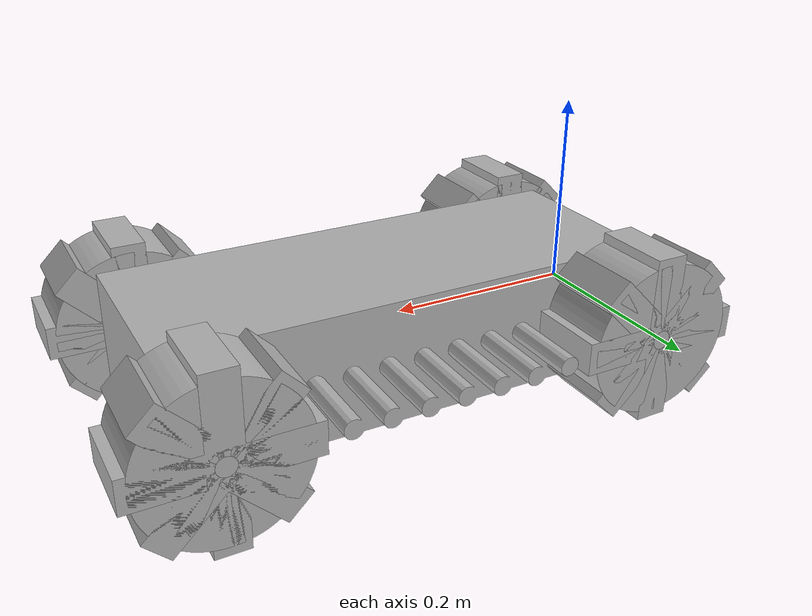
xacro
<?xml version="1.0" ?>
<robot name="prismatic_experiment" xmlns:xacro="http://www.ros.org/wiki/xacro">

<xacro:include filename="$(find prismatic_experiment_description)/urdf/materials.xacro" />
<xacro:include filename="$(find prismatic_experiment_description)/urdf/prismatic_experiment.trans" />
<xacro:include filename="$(find prismatic_experiment_description)/urdf/prismatic_experiment.gazebo" />
<link name="base_link">
  <inertial>
    <origin xyz="0.2258879999999996 -4.3124927618332746e-17 -1.1859355095041503e-16" rpy="0 0 0"/>
    <mass value="13.497451271946687"/>
    <inertia ixx="0.069002" iyy="0.320506" izz="0.353298" ixy="-0.0" iyz="-0.0" ixz="-0.0"/>
  </inertial>
  <visual>
    <origin xyz="0 0 0" rpy="0 0 0"/>
    <geometry>
      <mesh filename="package://prismatic_experiment_description/meshes/base_link.stl" scale="0.001 0.001 0.001"/>
    </geometry>
    <material name="silver"/>
  </visual>
  <collision>
    <origin xyz="0 0 0" rpy="0 0 0"/>
    <geometry>
      <mesh filename="package://prismatic_experiment_description/meshes/base_link.stl" scale="0.001 0.001 0.001"/>
    </geometry>
  </collision>
</link>

<link name="gear_maint_1">
  <inertial>
    <origin xyz="6.137300737063533e-14 0.03999999999999998 -4.250930002814283e-17" rpy="0 0 0"/>
    <mass value="0.8558077419960403"/>
    <inertia ixx="0.001777" iyy="0.002641" izz="0.001777" ixy="-0.0" iyz="-0.0" ixz="-0.0"/>
  </inertial>
  <visual>
    <origin xyz="-0.0 0.175 -0.0" rpy="0 0 0"/>
    <geometry>
      <mesh filename="package://prismatic_experiment_description/meshes/gear_maint_1.stl" scale="0.001 0.001 0.001"/>
    </geometry>
    <material name="silver"/>
  </visual>
  <collision>
    <origin xyz="-0.0 0.175 -0.0" rpy="0 0 0"/>
    <geometry>
      <mesh filename="package://prismatic_experiment_description/meshes/gear_maint_1.stl" scale="0.001 0.001 0.001"/>
    </geometry>
  </collision>
</link>

<link name="gear_mainc_1">
  <inertial>
    <origin xyz="6.136239086296236e-14 0.03999999999999998 -1.0627325007035708e-17" rpy="0 0 0"/>
    <mass value="0.8558077419960404"/>
    <inertia ixx="0.001777" iyy="0.002641" izz="0.001777" ixy="-0.0" iyz="-0.0" ixz="0.0"/>
  </inertial>
  <visual>
    <origin xyz="-0.0 0.175 -0.0" rpy="0 0 0"/>
    <geometry>
      <mesh filename="package://prismatic_experiment_description/meshes/gear_mainc_1.stl" scale="0.001 0.001 0.001"/>
    </geometry>
    <material name="silver"/>
  </visual>
  <collision>
    <origin xyz="-0.0 0.175 -0.0" rpy="0 0 0"/>
    <geometry>
      <mesh filename="package://prismatic_experiment_description/meshes/gear_mainc_1.stl" scale="0.001 0.001 0.001"/>
    </geometry>
  </collision>
</link>

<link name="gear_circle_1">
  <inertial>
    <origin xyz="3.279642276972099e-14 0.03999999999999998 1.1349944714130247e-17" rpy="0 0 0"/>
    <mass value="1.60264164219345"/>
    <inertia ixx="0.00349" iyy="0.00527" izz="0.00349" ixy="-0.0" iyz="0.0" ixz="0.0"/>
  </inertial>
  <visual>
    <origin xyz="-0.0 0.175 -0.0" rpy="0 0 0"/>
    <geometry>
      <mesh filename="package://prismatic_experiment_description/meshes/gear_circle_1.stl" scale="0.001 0.001 0.001"/>
    </geometry>
    <material name="silver"/>
  </visual>
  <collision>
    <origin xyz="-0.0 0.175 -0.0" rpy="0 0 0"/>
    <geometry>
      <mesh filename="package://prismatic_experiment_description/meshes/gear_circle_1.stl" scale="0.001 0.001 0.001"/>
    </geometry>
  </collision>
</link>

<link name="gear_mainc_2">
  <inertial>
    <origin xyz="6.138260039145749e-14 -0.03999999999999998 1.0627325007035708e-17" rpy="0 0 0"/>
    <mass value="0.8558077419960404"/>
    <inertia ixx="0.001777" iyy="0.002641" izz="0.001777" ixy="0.0" iyz="-0.0" ixz="-0.0"/>
  </inertial>
  <visual>
    <origin xyz="-0.0 -0.175 -0.0" rpy="0 0 0"/>
    <geometry>
      <mesh filename="package://prismatic_experiment_description/meshes/gear_mainc_2.stl" scale="0.001 0.001 0.001"/>
    </geometry>
    <material name="silver"/>
  </visual>
  <collision>
    <origin xyz="-0.0 -0.175 -0.0" rpy="0 0 0"/>
    <geometry>
      <mesh filename="package://prismatic_experiment_description/meshes/gear_mainc_2.stl" scale="0.001 0.001 0.001"/>
    </geometry>
  </collision>
</link>

<link name="gear_maint_2">
  <inertial>
    <origin xyz="6.138433511493347e-14 -0.03999999999999998 4.250930002814283e-17" rpy="0 0 0"/>
    <mass value="0.8558077419960403"/>
    <inertia ixx="0.001777" iyy="0.002641" izz="0.001777" ixy="0.0" iyz="-0.0" ixz="0.0"/>
  </inertial>
  <visual>
    <origin xyz="-0.0 -0.175 -0.0" rpy="0 0 0"/>
    <geometry>
      <mesh filename="package://prismatic_experiment_description/meshes/gear_maint_2.stl" scale="0.001 0.001 0.001"/>
    </geometry>
    <material name="silver"/>
  </visual>
  <collision>
    <origin xyz="-0.0 -0.175 -0.0" rpy="0 0 0"/>
    <geometry>
      <mesh filename="package://prismatic_experiment_description/meshes/gear_maint_2.stl" scale="0.001 0.001 0.001"/>
    </geometry>
  </collision>
</link>

<link name="gear_circle_2">
  <inertial>
    <origin xyz="3.278999027912229e-14 -0.03999999999999998 -1.1349944714130247e-17" rpy="0 0 0"/>
    <mass value="1.60264164219345"/>
    <inertia ixx="0.00349" iyy="0.00527" izz="0.00349" ixy="0.0" iyz="0.0" ixz="-0.0"/>
  </inertial>
  <visual>
    <origin xyz="-0.0 -0.175 -0.0" rpy="0 0 0"/>
    <geometry>
      <mesh filename="package://prismatic_experiment_description/meshes/gear_circle_2.stl" scale="0.001 0.001 0.001"/>
    </geometry>
    <material name="silver"/>
  </visual>
  <collision>
    <origin xyz="-0.0 -0.175 -0.0" rpy="0 0 0"/>
    <geometry>
      <mesh filename="package://prismatic_experiment_description/meshes/gear_circle_2.stl" scale="0.001 0.001 0.001"/>
    </geometry>
  </collision>
</link>

<link name="gear_mainc_3">
  <inertial>
    <origin xyz="6.145084441300241e-14 0.03999999999999998 -7.296655933160238e-18" rpy="0 0 0"/>
    <mass value="0.8558077419960404"/>
    <inertia ixx="0.001777" iyy="0.002641" izz="0.001777" ixy="-0.0" iyz="0.0" ixz="0.0"/>
  </inertial>
  <visual>
    <origin xyz="-0.451776 0.175 -0.0" rpy="0 0 0"/>
    <geometry>
      <mesh filename="package://prismatic_experiment_description/meshes/gear_mainc_3.stl" scale="0.001 0.001 0.001"/>
    </geometry>
    <material name="silver"/>
  </visual>
  <collision>
    <origin xyz="-0.451776 0.175 -0.0" rpy="0 0 0"/>
    <geometry>
      <mesh filename="package://prismatic_experiment_description/meshes/gear_mainc_3.stl" scale="0.001 0.001 0.001"/>
    </geometry>
  </collision>
</link>

<link name="gear_maint_3">
  <inertial>
    <origin xyz="6.150635556423367e-14 0.03999999999999998 -3.9178630954267364e-17" rpy="0 0 0"/>
    <mass value="0.8558077419960403"/>
    <inertia ixx="0.001777" iyy="0.002641" izz="0.001777" ixy="-0.0" iyz="0.0" ixz="-0.0"/>
  </inertial>
  <visual>
    <origin xyz="-0.451776 0.175 -0.0" rpy="0 0 0"/>
    <geometry>
      <mesh filename="package://prismatic_experiment_description/meshes/gear_maint_3.stl" scale="0.001 0.001 0.001"/>
    </geometry>
    <material name="silver"/>
  </visual>
  <collision>
    <origin xyz="-0.451776 0.175 -0.0" rpy="0 0 0"/>
    <geometry>
      <mesh filename="package://prismatic_experiment_description/meshes/gear_maint_3.stl" scale="0.001 0.001 0.001"/>
    </geometry>
  </collision>
</link>

<link name="gear_circle_3">
  <inertial>
    <origin xyz="3.2807090377673376e-14 0.03999999999999998 1.4680613788005715e-17" rpy="0 0 0"/>
    <mass value="1.60264164219345"/>
    <inertia ixx="0.00349" iyy="0.00527" izz="0.00349" ixy="-0.0" iyz="0.0" ixz="0.0"/>
  </inertial>
  <visual>
    <origin xyz="-0.451776 0.175 -0.0" rpy="0 0 0"/>
    <geometry>
      <mesh filename="package://prismatic_experiment_description/meshes/gear_circle_3.stl" scale="0.001 0.001 0.001"/>
    </geometry>
    <material name="silver"/>
  </visual>
  <collision>
    <origin xyz="-0.451776 0.175 -0.0" rpy="0 0 0"/>
    <geometry>
      <mesh filename="package://prismatic_experiment_description/meshes/gear_circle_3.stl" scale="0.001 0.001 0.001"/>
    </geometry>
  </collision>
</link>

<link name="gear_mainc_4">
  <inertial>
    <origin xyz="6.145084441300241e-14 -0.03999999999999998 1.395799408091118e-17" rpy="0 0 0"/>
    <mass value="0.8558077419960404"/>
    <inertia ixx="0.001777" iyy="0.002641" izz="0.001777" ixy="0.0" iyz="0.0" ixz="-0.0"/>
  </inertial>
  <visual>
    <origin xyz="-0.451776 -0.175 -0.0" rpy="0 0 0"/>
    <geometry>
      <mesh filename="package://prismatic_experiment_description/meshes/gear_mainc_4.stl" scale="0.001 0.001 0.001"/>
    </geometry>
    <material name="silver"/>
  </visual>
  <collision>
    <origin xyz="-0.451776 -0.175 -0.0" rpy="0 0 0"/>
    <geometry>
      <mesh filename="package://prismatic_experiment_description/meshes/gear_mainc_4.stl" scale="0.001 0.001 0.001"/>
    </geometry>
  </collision>
</link>

<link name="gear_maint_4">
  <inertial>
    <origin xyz="6.150635556423367e-14 -0.03999999999999998 4.583996910201829e-17" rpy="0 0 0"/>
    <mass value="0.8558077419960403"/>
    <inertia ixx="0.001777" iyy="0.002641" izz="0.001777" ixy="0.0" iyz="-0.0" ixz="0.0"/>
  </inertial>
  <visual>
    <origin xyz="-0.451776 -0.175 -0.0" rpy="0 0 0"/>
    <geometry>
      <mesh filename="package://prismatic_experiment_description/meshes/gear_maint_4.stl" scale="0.001 0.001 0.001"/>
    </geometry>
    <material name="silver"/>
  </visual>
  <collision>
    <origin xyz="-0.451776 -0.175 -0.0" rpy="0 0 0"/>
    <geometry>
      <mesh filename="package://prismatic_experiment_description/meshes/gear_maint_4.stl" scale="0.001 0.001 0.001"/>
    </geometry>
  </collision>
</link>

<link name="gear_circle_4">
  <inertial>
    <origin xyz="3.2807090377673376e-14 -0.03999999999999998 -8.019275640254776e-18" rpy="0 0 0"/>
    <mass value="1.60264164219345"/>
    <inertia ixx="0.00349" iyy="0.00527" izz="0.00349" ixy="0.0" iyz="0.0" ixz="-0.0"/>
  </inertial>
  <visual>
    <origin xyz="-0.451776 -0.175 -0.0" rpy="0 0 0"/>
    <geometry>
      <mesh filename="package://prismatic_experiment_description/meshes/gear_circle_4.stl" scale="0.001 0.001 0.001"/>
    </geometry>
    <material name="silver"/>
  </visual>
  <collision>
    <origin xyz="-0.451776 -0.175 -0.0" rpy="0 0 0"/>
    <geometry>
      <mesh filename="package://prismatic_experiment_description/meshes/gear_circle_4.stl" scale="0.001 0.001 0.001"/>
    </geometry>
  </collision>
</link>

<joint name="« 1" type="fixed">
  <origin xyz="0.0 0.0 0.0" rpy="0 0 0"/>
  <parent link="gear_circle_1"/>
  <child link="gear_maint_1"/>
</joint>

<joint name="« 2" type="fixed">
  <origin xyz="0.0 0.0 0.0" rpy="0 0 0"/>
  <parent link="gear_circle_1"/>
  <child link="gear_mainc_1"/>
</joint>

<joint name="XC_ 3" type="prismatic">
  <origin xyz="0.0 -0.175 0.0" rpy="0 0 0"/>
  <parent link="base_link"/>
  <child link="gear_circle_1"/>
  <axis xyz="1.0 0.0 0.0"/>
  <limit upper="0.45" lower="0.0" effort="100" velocity="100"/>
</joint>

<joint name="« 4" type="fixed">
  <origin xyz="0.0 0.0 0.0" rpy="0 0 0"/>
  <parent link="gear_circle_2"/>
  <child link="gear_mainc_2"/>
</joint>

<joint name="« 5" type="fixed">
  <origin xyz="0.0 0.0 0.0" rpy="0 0 0"/>
  <parent link="gear_circle_2"/>
  <child link="gear_maint_2"/>
</joint>

<joint name="XC_ 6" type="prismatic">
  <origin xyz="0.0 0.175 0.0" rpy="0 0 0"/>
  <parent link="base_link"/>
  <child link="gear_circle_2"/>
  <axis xyz="1.0 0.0 0.0"/>
  <limit upper="0.45" lower="0.0" effort="100" velocity="100"/>
</joint>

<joint name="« 7" type="fixed">
  <origin xyz="0.0 0.0 0.0" rpy="0 0 0"/>
  <parent link="gear_circle_3"/>
  <child link="gear_mainc_3"/>
</joint>

<joint name="« 8" type="fixed">
  <origin xyz="0.0 0.0 0.0" rpy="0 0 0"/>
  <parent link="gear_circle_3"/>
  <child link="gear_maint_3"/>
</joint>

<joint name="XC_ 9" type="prismatic">
  <origin xyz="0.451776 -0.175 0.0" rpy="0 0 0"/>
  <parent link="base_link"/>
  <child link="gear_circle_3"/>
  <axis xyz="1.0 0.0 0.0"/>
  <limit upper="0.45" lower="0.0" effort="100" velocity="100"/>
</joint>

<joint name="« 10" type="fixed">
  <origin xyz="0.0 0.0 0.0" rpy="0 0 0"/>
  <parent link="gear_circle_4"/>
  <child link="gear_mainc_4"/>
</joint>

<joint name="« 11" type="fixed">
  <origin xyz="0.0 0.0 0.0" rpy="0 0 0"/>
  <parent link="gear_circle_4"/>
  <child link="gear_maint_4"/>
</joint>

<joint name="XC_ 12" type="prismatic">
  <origin xyz="0.451776 0.175 0.0" rpy="0 0 0"/>
  <parent link="base_link"/>
  <child link="gear_circle_4"/>
  <axis xyz="1.0 0.0 0.0"/>
  <limit upper="0.45" lower="0.0" effort="100" velocity="100"/>
</joint>

</robot>

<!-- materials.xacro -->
<robot name="prismatic_experiment" xmlns:xacro="http://www.ros.org/wiki/xacro" >

<material name="silver">
  <color rgba="0.700 0.700 0.700 1.000"/>
</material>

</robot>

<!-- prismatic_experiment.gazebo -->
<robot name="prismatic_experiment" xmlns:xacro="http://www.ros.org/wiki/xacro" >

<xacro:property name="body_color" value="Gazebo/Silver" />

<gazebo>
  <plugin name="control" filename="libgazebo_ros_control.so"/>
</gazebo>
<gazebo reference="base_link">
  <material>${body_color}</material>
  <mu1>0.2</mu1>
  <mu2>0.2</mu2>
  <selfCollide>true</selfCollide>
  <gravity>true</gravity>
</gazebo>

<gazebo reference="gear_maint_1">
  <material>${body_color}</material>
  <mu1>0.2</mu1>
  <mu2>0.2</mu2>
  <selfCollide>true</selfCollide>
</gazebo>

<gazebo reference="gear_mainc_1">
  <material>${body_color}</material>
  <mu1>0.2</mu1>
  <mu2>0.2</mu2>
  <selfCollide>true</selfCollide>
</gazebo>

<gazebo reference="gear_circle_1">
  <material>${body_color}</material>
  <mu1>0.2</mu1>
  <mu2>0.2</mu2>
  <selfCollide>true</selfCollide>
</gazebo>

<gazebo reference="gear_mainc_2">
  <material>${body_color}</material>
  <mu1>0.2</mu1>
  <mu2>0.2</mu2>
  <selfCollide>true</selfCollide>
</gazebo>

<gazebo reference="gear_maint_2">
  <material>${body_color}</material>
  <mu1>0.2</mu1>
  <mu2>0.2</mu2>
  <selfCollide>true</selfCollide>
</gazebo>

<gazebo reference="gear_circle_2">
  <material>${body_color}</material>
  <mu1>0.2</mu1>
  <mu2>0.2</mu2>
  <selfCollide>true</selfCollide>
</gazebo>

<gazebo reference="gear_mainc_3">
  <material>${body_color}</material>
  <mu1>0.2</mu1>
  <mu2>0.2</mu2>
  <selfCollide>true</selfCollide>
</gazebo>

<gazebo reference="gear_maint_3">
  <material>${body_color}</material>
  <mu1>0.2</mu1>
  <mu2>0.2</mu2>
  <selfCollide>true</selfCollide>
</gazebo>

<gazebo reference="gear_circle_3">
  <material>${body_color}</material>
  <mu1>0.2</mu1>
  <mu2>0.2</mu2>
  <selfCollide>true</selfCollide>
</gazebo>

<gazebo reference="gear_mainc_4">
  <material>${body_color}</material>
  <mu1>0.2</mu1>
  <mu2>0.2</mu2>
  <selfCollide>true</selfCollide>
</gazebo>

<gazebo reference="gear_maint_4">
  <material>${body_color}</material>
  <mu1>0.2</mu1>
  <mu2>0.2</mu2>
  <selfCollide>true</selfCollide>
</gazebo>

<gazebo reference="gear_circle_4">
  <material>${body_color}</material>
  <mu1>0.2</mu1>
  <mu2>0.2</mu2>
  <selfCollide>true</selfCollide>
</gazebo>

</robot>
